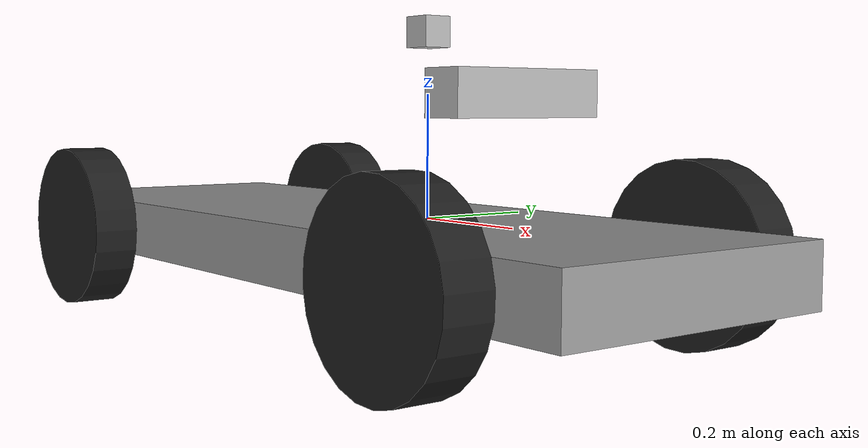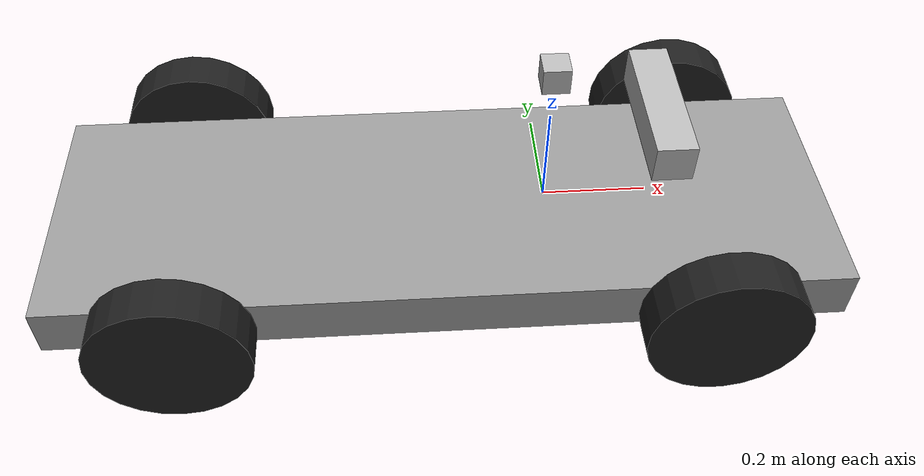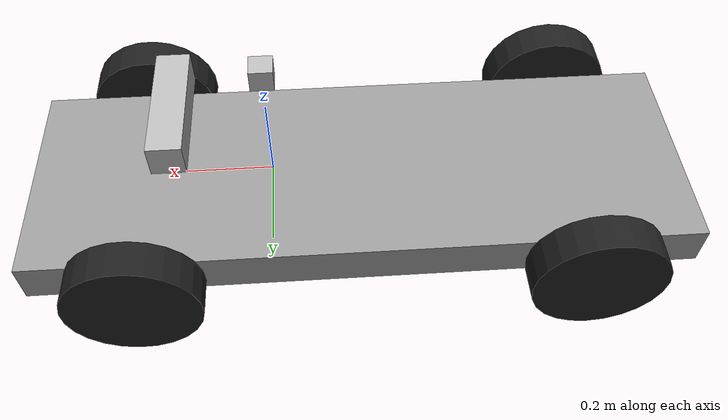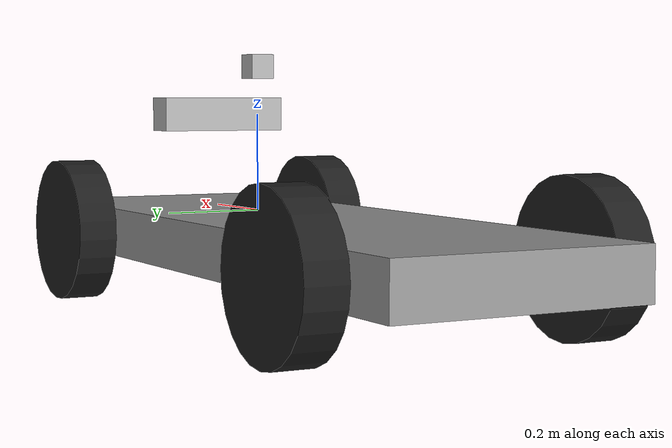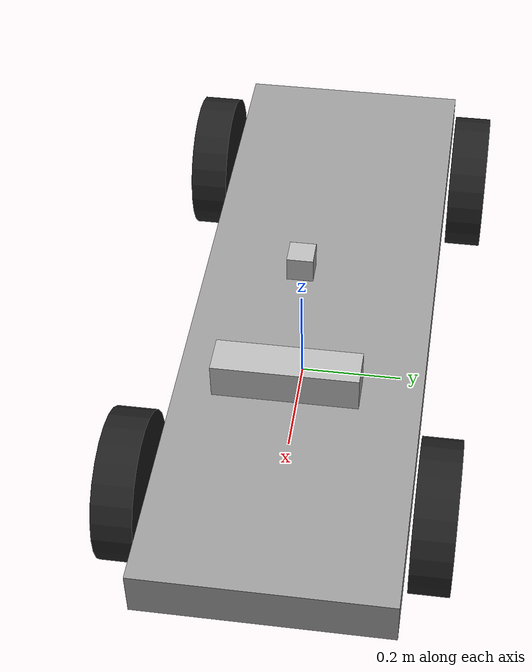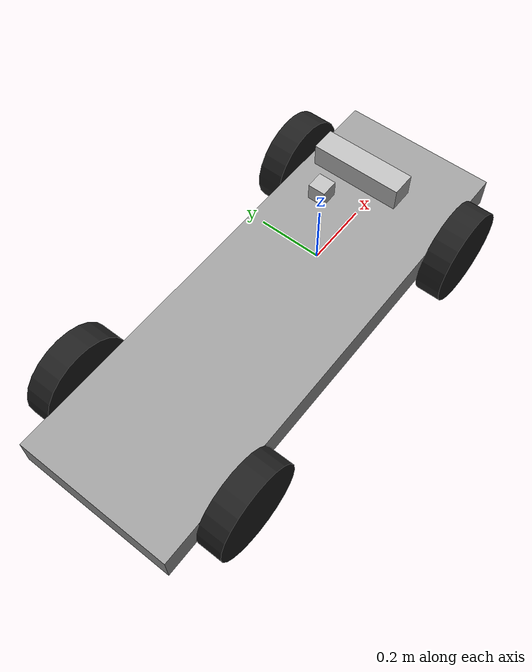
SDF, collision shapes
<?xml version="1.0" encoding="UTF-8"?>
<sdf version='1.6'>
  <model name='2d_lidar_rover'>
    <include>
      <uri>model://basic_rover</uri>
      <name>base</name>
    </include>
    <!--  2D LIDAR  -->
    <model name="laser_link">
      <link name="laser_left_link">
        <pose>0 0 0.3 0 0 0</pose>
        <collision name="top_collision">
          <geometry>
            <box>
              <size>0.05 0.05 0.05</size>
            </box>
          </geometry>
        </collision>
        <visual name="laser_left_visual">
          <geometry>
            <box>
              <size>0.06 0.05 0.05</size>
            </box>
          </geometry>
        </visual>
        <inertial>
          <mass>0.1</mass>
          <inertia>
            <ixx>0.000011023</ixx>
            <iyy>0.000010623</iyy>
            <izz>0.000010036</izz>
            <ixy>0</ixy>
            <ixz>0</ixz>
            <iyz>0</iyz>
          </inertia>
        </inertial>
        <sensor type="ray" name="left_laser_sensor">
          <pose>0 0 0.3 0 0 0</pose>
          <visualize>true</visualize>
          <update_rate>10</update_rate>
          <plugin name="laser_plugin" filename="libgazebo_ros_laser.so">
            <topicName>/scan</topicName>
            <frameName>laser_link</frameName>
          </plugin>
          <ray>
            <!-- The scan element contains the horizontal and vertical beams.-->
            <!-- Specs based on the RPLIDAR -->
            <scan>
              <!-- The horizontal beams -->
              <horizontal>
                <samples>720</samples>
                <resolution>1</resolution>
                <min_angle>-3.141516</min_angle>
                <max_angle>3.141516</max_angle>
              </horizontal>
            </scan>
            <range>
              <min>0.15</min>
              <max>18</max>
              <resolution>0.5</resolution>
            </range>
          </ray>
        </sensor>
      </link>
    </model>
    <joint name='chassis_left_laser_joint' type='fixed'>
      <parent>cart_front_steer::chassis</parent>
      <child>laser_link::laser_left_link</child>
      <pose frame=''>0.53 0 -0.07 0 0 0</pose>
      <physics>
        <ode>
          <limit>
            <cfm>0</cfm>
            <erp>0.2</erp>
          </limit>
          <suspension>
            <cfm>0</cfm>
            <erp>0.2</erp>
          </suspension>
        </ode>
      </physics>
    </joint>
  </model>
</sdf>

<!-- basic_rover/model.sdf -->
<sdf version='1.6'>
  <model name='basic_rover'>
    <model name='cart_front_steer'>
      <link name='chassis'>
        <pose frame=''>0 0 0.15 0 -0 0</pose>
        <inertial>
          <pose frame=''>0.1 0 0 0 -0 0</pose>
          <mass>10</mass>
          <inertia>
            <ixx>0.216667</ixx>
            <iyy>0.841667</iyy>
            <izz>1.04167</izz>
            <ixy>0</ixy>
            <ixz>0</ixz>
            <iyz>0</iyz>
          </inertia>
        </inertial>
        <collision name='collision'>
          <geometry>
            <box>
              <size>1.5 0.5 0.1</size>
            </box>
          </geometry>
          <max_contacts>10</max_contacts>
          <surface>
            <contact>
              <ode/>
            </contact>
            <bounce/>
            <friction>
              <torsional>
                <ode/>
              </torsional>
              <ode/>
            </friction>
          </surface>
        </collision>
        <visual name='visual'>
          <geometry>
            <box>
              <size>1.5 0.5 0.1</size>
            </box>
          </geometry>
          <material>
            <script>
              <uri>file://media/materials/scripts/gazebo.material</uri>
              <name>Gazebo/Grey</name>
            </script>
          </material>
        </visual>
        <self_collide>0</self_collide>
        <enable_wind>0</enable_wind>
        <kinematic>0</kinematic>
      </link>
      <link name='wheel_front_left'>
        <pose frame=''>0.5 0.298 0.15 -1.5708 -0.087266 0</pose>
        <inertial>
          <mass>0.5</mass>
          <inertia>
            <ixx>0.00307917</ixx>
            <iyy>0.00307917</iyy>
            <izz>0.005625</izz>
            <ixy>0</ixy>
            <ixz>0</ixz>
            <iyz>0</iyz>
          </inertia>
          <pose frame=''>0 0 0 0 -0 0</pose>
        </inertial>
        <collision name='collision'>
          <geometry>
            <cylinder>
              <radius>0.15</radius>
              <length>0.08</length>
            </cylinder>
          </geometry>
          <max_contacts>10</max_contacts>
          <surface>
            <friction>
              <ode>
                <mu>1</mu>
                <mu2>1</mu2>
                <slip1>0.2</slip1>
                <slip2>0.2</slip2>
              </ode>
            </friction>
          </surface>
        </collision>
        <visual name='visual'>
          <geometry>
            <cylinder>
              <radius>0.15</radius>
              <length>0.08</length>
            </cylinder>
          </geometry>
          <material>
            <script>
              <uri>file://media/materials/scripts/gazebo.material</uri>
              <name>Gazebo/Black</name>
            </script>
          </material>
        </visual>
        <self_collide>0</self_collide>
        <enable_wind>0</enable_wind>
        <kinematic>0</kinematic>
      </link>
      <joint name='wheel_front_left_steer_spin' type='universal'>
        <parent>chassis</parent>
        <child>wheel_front_left</child>
        <axis>
          <xyz>0 -1 0</xyz>
          <limit>
            <lower>-0.610865</lower>
            <upper>0.610865</upper>
          </limit>
          <use_parent_model_frame>0</use_parent_model_frame>
          <dynamics>
            <spring_reference>0</spring_reference>
            <spring_stiffness>100</spring_stiffness>
          </dynamics>
        </axis>
        <axis2>
          <xyz>0 0 1</xyz>
          <use_parent_model_frame>0</use_parent_model_frame>
          <dynamics>
            <spring_reference>0</spring_reference>
            <spring_stiffness>0</spring_stiffness>
          </dynamics>
        </axis2>
      </joint>
      <link name='wheel_front_right'>
        <pose frame=''>0.5 -0.298 0.15 -1.5708 -0.087266 0</pose>
        <inertial>
          <mass>0.5</mass>
          <inertia>
            <ixx>0.00307917</ixx>
            <iyy>0.00307917</iyy>
            <izz>0.005625</izz>
            <ixy>0</ixy>
            <ixz>0</ixz>
            <iyz>0</iyz>
          </inertia>
          <pose frame=''>0 0 0 0 -0 0</pose>
        </inertial>
        <collision name='collision'>
          <geometry>
            <cylinder>
              <radius>0.15</radius>
              <length>0.08</length>
            </cylinder>
          </geometry>
          <max_contacts>10</max_contacts>
          <surface>
            <friction>
              <ode>
                <mu>1</mu>
                <mu2>1</mu2>
                <slip1>0.2</slip1>
                <slip2>0.2</slip2>
              </ode>
            </friction>
          </surface>
        </collision>
        <visual name='visual'>
          <geometry>
            <cylinder>
              <radius>0.15</radius>
              <length>0.08</length>
            </cylinder>
          </geometry>
          <material>
            <script>
              <uri>file://media/materials/scripts/gazebo.material</uri>
              <name>Gazebo/Black</name>
            </script>
          </material>
        </visual>
        <self_collide>0</self_collide>
        <enable_wind>0</enable_wind>
        <kinematic>0</kinematic>
      </link>
      <joint name='wheel_front_right_steer_spin' type='universal'>
        <parent>chassis</parent>
        <child>wheel_front_right</child>
        <axis>
          <xyz>0 -1 0</xyz>
          <limit>
            <lower>-0.610865</lower>
            <upper>0.610865</upper>
          </limit>
          <use_parent_model_frame>0</use_parent_model_frame>
          <dynamics>
            <spring_reference>0</spring_reference>
            <spring_stiffness>100</spring_stiffness>
          </dynamics>
        </axis>
        <axis2>
          <xyz>0 0 1</xyz>
          <use_parent_model_frame>0</use_parent_model_frame>
          <dynamics>
            <spring_reference>0</spring_reference>
            <spring_stiffness>0</spring_stiffness>
          </dynamics>
        </axis2>
      </joint>
      <link name='wheel_rear_left'>
        <pose frame=''>-0.5 0.298 0.15 -1.5708 0 0</pose>
        <inertial>
          <mass>0.5</mass>
          <inertia>
            <ixx>0.00307917</ixx>
            <iyy>0.00307917</iyy>
            <izz>0.005625</izz>
            <ixy>0</ixy>
            <ixz>0</ixz>
            <iyz>0</iyz>
          </inertia>
          <pose frame=''>0 0 0 0 -0 0</pose>
        </inertial>
        <collision name='collision'>
          <geometry>
            <cylinder>
              <radius>0.15</radius>
              <length>0.08</length>
            </cylinder>
          </geometry>
          <max_contacts>10</max_contacts>
          <surface>
            <friction>
              <ode>
                <mu>1</mu>
                <mu2>1</mu2>
                <slip1>0.2</slip1>
                <slip2>0.2</slip2>
              </ode>
            </friction>
          </surface>
        </collision>
        <visual name='visual'>
          <geometry>
            <cylinder>
              <radius>0.15</radius>
              <length>0.08</length>
            </cylinder>
          </geometry>
          <material>
            <script>
              <uri>file://media/materials/scripts/gazebo.material</uri>
              <name>Gazebo/Black</name>
            </script>
          </material>
        </visual>
        <self_collide>0</self_collide>
        <enable_wind>0</enable_wind>
        <kinematic>0</kinematic>
      </link>
      <joint name='wheel_rear_left_spin' type='revolute'>
        <parent>chassis</parent>
        <child>wheel_rear_left</child>
        <axis>
          <xyz>0 0 1</xyz>
          <use_parent_model_frame>0</use_parent_model_frame>
          <limit>
            <lower>-1e+16</lower>
            <upper>1e+16</upper>
          </limit>
          <dynamics>
            <spring_reference>0</spring_reference>
            <spring_stiffness>0</spring_stiffness>
          </dynamics>
        </axis>
      </joint>
      <link name='wheel_rear_right'>
        <pose frame=''>-0.5 -0.298 0.15 -1.5708 0 0</pose>
        <inertial>
          <mass>0.5</mass>
          <inertia>
            <ixx>0.00307917</ixx>
            <iyy>0.00307917</iyy>
            <izz>0.005625</izz>
            <ixy>0</ixy>
            <ixz>0</ixz>
            <iyz>0</iyz>
          </inertia>
          <pose frame=''>0 0 0 0 -0 0</pose>
        </inertial>
        <collision name='collision'>
          <geometry>
            <cylinder>
              <radius>0.15</radius>
              <length>0.08</length>
            </cylinder>
          </geometry>
          <max_contacts>10</max_contacts>
          <surface>
            <friction>
              <ode>
                <mu>1</mu>
                <mu2>1</mu2>
                <slip1>0.2</slip1>
                <slip2>0.2</slip2>
              </ode>
            </friction>
          </surface>
        </collision>
        <visual name='visual'>
          <geometry>
            <cylinder>
              <radius>0.15</radius>
              <length>0.08</length>
            </cylinder>
          </geometry>
          <material>
            <script>
              <uri>file://media/materials/scripts/gazebo.material</uri>
              <name>Gazebo/Black</name>
            </script>
          </material>
        </visual>
        <self_collide>0</self_collide>
        <enable_wind>0</enable_wind>
        <kinematic>0</kinematic>
      </link>
      <joint name='wheel_rear_right_spin' type='revolute'>
        <parent>chassis</parent>
        <child>wheel_rear_right</child>
        <axis>
          <xyz>0 0 1</xyz>
          <use_parent_model_frame>0</use_parent_model_frame>
          <limit>
            <lower>-1e+16</lower>
            <upper>1e+16</upper>
          </limit>
          <dynamics>
            <spring_reference>0</spring_reference>
            <spring_stiffness>0</spring_stiffness>
          </dynamics>
        </axis>
      </joint>
      <pose frame=''>-0.2 0 -0.2 -0 -0 -0</pose>
      <plugin name="skid_steer_drive_controller_custom" filename="libgazebo_ros_skid_steer_drive_custom.so">
        <updateRate>0.0</updateRate>
        <robotNamespace>/</robotNamespace>
        <leftFrontJoint>wheel_front_left_steer_spin</leftFrontJoint>
        <rightFrontJoint>wheel_front_right_steer_spin</rightFrontJoint>
        <leftRearJoint>wheel_rear_left_spin</leftRearJoint>
        <rightRearJoint>wheel_rear_right_spin</rightRearJoint>
        <wheelSeparation>0.596</wheelSeparation>
        <wheelDiameter>0.3</wheelDiameter>
        <robotBaseFrame>base_footprint</robotBaseFrame>
        <torque>1</torque>
        <commandTopic>cmd_vel</commandTopic>
        <odometryTopic>odom</odometryTopic>
        <odometryFrame>odom</odometryFrame>
        <covariance_x>0.000100</covariance_x>
        <covariance_y>0.000100</covariance_y>
        <covariance_yaw>0.000100</covariance_yaw>
        <broadcastTF>1</broadcastTF>
      </plugin>
    </model>
    <model name='kinect'>
    <plugin name="name_gps" filename="libhector_gazebo_ros_gps.so">
      <alwayson>1</alwayson>
      <updaterate>10.0</updaterate>
      <bodyname>gps_link</bodyname>
      <topicname>fix</topicname>
      <velocitytopicname>fixvelocity</velocitytopicname>
      <drift>5.0 5.0 5.0</drift>
      <gaussiannoise>0.1 0.1 0.1</gaussiannoise>
      <velocitydrift>0 0 0</velocitydrift>
      <velocitygaussiannoise>0.1 0.1 0.1</velocitygaussiannoise>
    </plugin>
      <pose frame=''>0.2 0 0.2 0 0 0</pose>
      <link name='camera_link'>
        <inertial>
          <mass>0.1</mass>
          <pose frame=''>0 0 0 0 0 0</pose>
          <inertia>
            <ixx>1</ixx>
            <ixy>0</ixy>
            <ixz>0</ixz>
            <iyy>1</iyy>
            <iyz>0</iyz>
            <izz>1</izz>
          </inertia>
        </inertial>
        <collision name='collision'>
          <geometry>
            <box>
              <size>0.073 0.276 0.072</size>
            </box>
          </geometry>
          <max_contacts>10</max_contacts>
          <surface>
            <contact>
              <ode/>
            </contact>
            <bounce/>
            <friction>
              <torsional>
                <ode/>
              </torsional>
              <ode/>
            </friction>
          </surface>
        </collision>
        <visual name='visual'>
          <geometry>
            <mesh>
              <uri>model://kinect/meshes/kinect.dae</uri>
            </mesh>
          </geometry>
        </visual>
        <gravity>1</gravity>
        <sensor name='imu_sensor' type='imu'>
          <always_on>1</always_on>
          <update_rate>100</update_rate>
          <visualize>1</visualize>
          <topic>__default_topic__</topic>
          <plugin name='imu_plugin' filename='libgazebo_ros_imu_sensor.so'>
            <topicName>imu</topicName>
            <bodyName>imu_link</bodyName>
            <updateRateHZ>10.0</updateRateHZ>
            <gaussianNoise>0.0</gaussianNoise>
            <xyzOffset>0 0 0</xyzOffset>
            <rpyOffset>0 0 0</rpyOffset>
            <frameName>imu_link</frameName>
          </plugin>
          <pose frame=''>0 0 0 0 -0 0</pose>
          <imu/>
        </sensor>

        <sensor name='camera' type='depth'>
          <plugin name='camera_plugin' filename='libgazebo_ros_openni_kinect.so'>
            <baseline>0.2</baseline>
            <alwaysOn>1</alwaysOn>
            <updateRate>0.0</updateRate>
            <cameraName>camera_ir</cameraName>
            <imageTopicName>/camera/color/image_raw</imageTopicName>
            <cameraInfoTopicName>/camera/color/camera_info</cameraInfoTopicName>
            <depthImageTopicName>/camera/depth/image_raw</depthImageTopicName>
            <depthImageCameraInfoTopicName>/camera/depth/camera_info</depthImageCameraInfoTopicName>
            <pointCloudTopicName>/camera/depth/points</pointCloudTopicName>
            <frameName>camera_link</frameName>
            <pointCloudCutoff>0.5</pointCloudCutoff>
            <pointCloudCutoffMax>3.0</pointCloudCutoffMax>
            <distortionK1>0</distortionK1>
            <distortionK2>0</distortionK2>
            <distortionK3>0</distortionK3>
            <distortionT1>0</distortionT1>
            <distortionT2>0</distortionT2>
            <CxPrime>0</CxPrime>
            <Cx>0</Cx>
            <Cy>0</Cy>
            <focalLength>0</focalLength>
            <hackBaseline>0</hackBaseline>
          </plugin>
          <update_rate>20</update_rate>
          <camera name='__default__'>
            <horizontal_fov>1.0472</horizontal_fov>
            <image>
              <width>640</width>
              <height>480</height>
              <format>R8G8B8</format>
            </image>
            <clip>
              <near>0.05</near>
              <far>3</far>
            </clip>
          </camera>
        </sensor>
        <self_collide>0</self_collide>
        <enable_wind>0</enable_wind>
        <kinematic>0</kinematic>
      </link>
    </model>
    <joint name='chassis_JOINT_1' type='fixed'>
      <parent>cart_front_steer::chassis</parent>
      <child>kinect::camera_link</child>
      <pose frame=''>-0.38 0 0.2 0 0 0</pose>
      <physics>
        <ode>
          <limit>
            <cfm>0</cfm>
            <erp>0.2</erp>
          </limit>
          <suspension>
            <cfm>0</cfm>
            <erp>0.2</erp>
          </suspension>
        </ode>
      </physics>
    </joint>
    <static>0</static>
    <allow_auto_disable>0</allow_auto_disable>
  </model>
</sdf>
